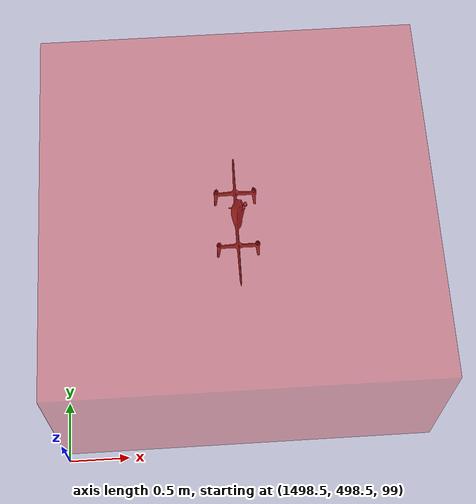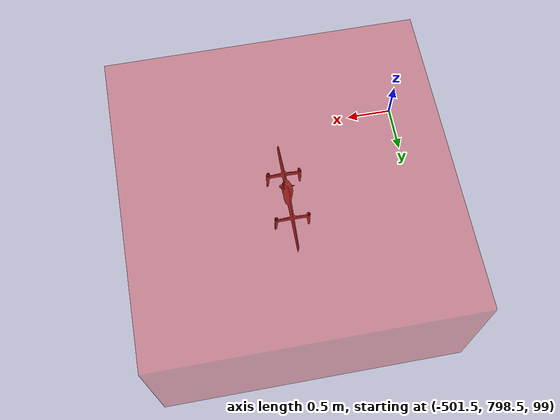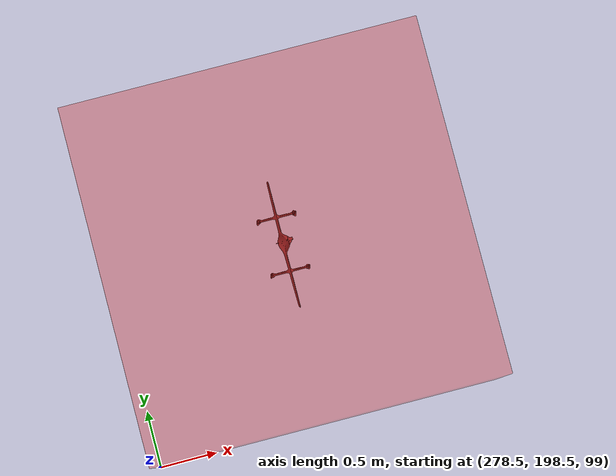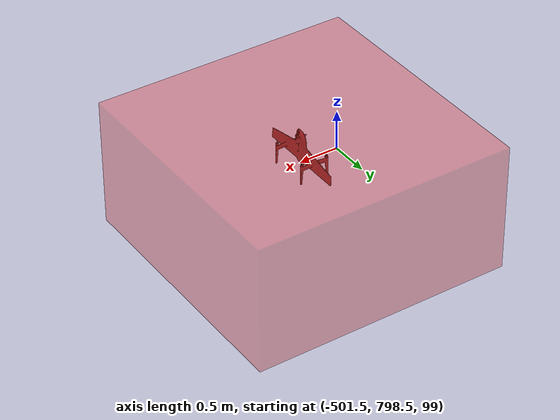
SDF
<sdf version="1.9">
 <world name="baylands">
  <physics type="ode">
   <max_step_size>0.004</max_step_size>
   <real_time_factor>1.0</real_time_factor>
   <real_time_update_rate>250</real_time_update_rate>
  </physics>
  <gravity>0 0 -9.8</gravity>
  <magnetic_field>6e-06 2.3e-05 -4.2e-05</magnetic_field>
  <atmosphere type="adiabatic"/>
  <scene>
   <ambient>0.8 0.5 1</ambient>
   <grid>false</grid>
   <sky><clouds>true</clouds></sky>
   <shadows>1</shadows>
  </scene>
  <light name="sunUTC" type="directional">
   <pose>0 0 500 0 -0 0</pose>
   <cast_shadows>false</cast_shadows>
   <intensity>1</intensity>
   <direction>0.001 0.625 -0.78</direction>
   <diffuse>0.904 0.904 0.904 1</diffuse>
   <specular>0.271 0.271 0.271 1</specular>
   <attenuation><range>2000</range><linear>0</linear><constant>1</constant><quadratic>0</quadratic></attenuation>
  </light>
  <include>
   <uri>model://intruder_quadtailsitter</uri>
   <name>intruder_0</name>
   <pose>280 200 100 0 0 0</pose>
  </include>
  <include>
   <uri>model://intruder_quadtailsitter_circle</uri>
   <name>intruder_1</name>
   <pose>1500 500 100 0 0 0</pose>
  </include>
  <include>
   <uri>model://intruder_quadtailsitter_figure8</uri>
   <name>intruder_2</name>
   <pose>-500 800 100 0 0 0</pose>
  </include>
  <spherical_coordinates>
   <surface_model>EARTH_WGS84</surface_model>
   <world_frame_orientation>ENU</world_frame_orientation>
   <latitude_deg>37.412173071650805</latitude_deg>
   <longitude_deg>-121.998878727967</longitude_deg>
   <elevation>38</elevation>
  </spherical_coordinates>
 </world>
</sdf>

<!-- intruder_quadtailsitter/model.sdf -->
<sdf version='1.9'>
  <model name='intruder_quadtailsitter'>
    <static>false</static>
    <pose>0 0 0 0 0 0</pose>

    <link name='base_link'>
      <inertial>
        <mass>2.0</mass>
        <inertia>
          <ixx>0.02</ixx>
          <iyy>0.02</iyy>
          <izz>0.04</izz>
        </inertia>
      </inertial>

      <visual name='body_visual'>
        <pose>-0.005 0 0.4 0 0 1.57</pose>
        <geometry>
          <mesh>
            <scale>0.001 0.001 0.001</scale>
            <uri>model://quadtailsitter/meshes/body.dae</uri>
          </mesh>
        </geometry>
        <material>
          <ambient>0.45 0.12 0.12 1.0</ambient>
          <diffuse>0.55 0.15 0.15 1.0</diffuse>
        </material>
      </visual>

      <collision name='body_collision'>
        <!-- FW: pitched 90 deg; long axis along nose (+Z body → horizontal flight). -->
        <pose>0 0 0 0 1.5707 0</pose>
        <geometry>
          <box>
            <size>0.55 0.35 0.25</size>
          </box>
        </geometry>
      </collision>

      <!-- Large visual + collision so gpu_lidar can see the intruder at range. -->
      <visual name='radar_reflector_visual'>
        <pose>0 0 0 0 0 0</pose>
        <geometry>
          <box>
            <size>3.0 3.0 1.5</size>
          </box>
        </geometry>
        <material>
          <ambient>0.8 0.1 0.1 0.35</ambient>
          <diffuse>0.9 0.15 0.15 0.35</diffuse>
        </material>
        <transparency>0.65</transparency>
      </visual>
      <collision name='radar_reflector'>
        <pose>0 0 0 0 0 0</pose>
        <geometry>
          <box>
            <size>3.0 3.0 1.5</size>
          </box>
        </geometry>
      </collision>
    </link>

    <plugin filename="libTrajectoryFollowerController.so"
            name="custom::TrajectoryFollowerController">
      <link_name>base_link</link_name>
      <loop>true</loop>
      <!-- Kinematic: SetWorldPoseCmd each step (no ODE wrench). Pose pub throttled for radar. -->
      <kinematic>true</kinematic>
      <publish_pose>true</publish_pose>
      <pose_publish_rate_hz>25</pose_publish_rate_hz>
      <!-- Tailsitter FW cruise: nose (+Z body) horizontal; applied after waypoint yaw. -->
      <pitch_offset>1.5707</pitch_offset>
      <!-- Racetrack: 14 km straight, 180 deg turn (R=500 m), reverse 14 km, turn; loop forever @ ~100 km/h. Relative to spawn. -->
      <waypoint><time>0.000</time><pose>0.00 0.00 0.00 0.000 0.000 0.000</pose></waypoint>
      <waypoint><time>504.000</time><pose>14000.00 0.00 0.00 0.000 0.000 0.000</pose></waypoint>
      <waypoint><time>507.142</time><pose>14086.82 7.60 0.00 0.000 0.000 0.175</pose></waypoint>
      <waypoint><time>510.283</time><pose>14171.01 30.15 0.00 0.000 0.000 0.349</pose></waypoint>
      <waypoint><time>513.425</time><pose>14250.00 66.99 0.00 0.000 0.000 0.524</pose></waypoint>
      <waypoint><time>516.566</time><pose>14321.39 116.98 0.00 0.000 0.000 0.698</pose></waypoint>
      <waypoint><time>519.708</time><pose>14383.02 178.61 0.00 0.000 0.000 0.873</pose></waypoint>
      <waypoint><time>522.850</time><pose>14433.01 250.00 0.00 0.000 0.000 1.047</pose></waypoint>
      <waypoint><time>525.991</time><pose>14469.85 328.99 0.00 0.000 0.000 1.222</pose></waypoint>
      <waypoint><time>529.133</time><pose>14492.40 413.18 0.00 0.000 0.000 1.396</pose></waypoint>
      <waypoint><time>532.274</time><pose>14500.00 500.00 0.00 0.000 0.000 1.571</pose></waypoint>
      <waypoint><time>535.416</time><pose>14492.40 586.82 0.00 0.000 0.000 1.745</pose></waypoint>
      <waypoint><time>538.558</time><pose>14469.85 671.01 0.00 0.000 0.000 1.920</pose></waypoint>
      <waypoint><time>541.699</time><pose>14433.01 750.00 0.00 0.000 0.000 2.094</pose></waypoint>
      <waypoint><time>544.841</time><pose>14383.02 821.39 0.00 0.000 0.000 2.269</pose></waypoint>
      <waypoint><time>547.982</time><pose>14321.39 883.02 0.00 0.000 0.000 2.443</pose></waypoint>
      <waypoint><time>551.124</time><pose>14250.00 933.01 0.00 0.000 0.000 2.618</pose></waypoint>
      <waypoint><time>554.265</time><pose>14171.01 969.85 0.00 0.000 0.000 2.793</pose></waypoint>
      <waypoint><time>557.407</time><pose>14086.82 992.40 0.00 0.000 0.000 2.967</pose></waypoint>
      <waypoint><time>560.549</time><pose>14000.00 1000.00 0.00 0.000 0.000 3.142</pose></waypoint>
      <waypoint><time>1064.549</time><pose>0.00 1000.00 0.00 0.000 0.000 3.142</pose></waypoint>
      <waypoint><time>1067.690</time><pose>-86.82 992.40 0.00 0.000 0.000 -2.967</pose></waypoint>
      <waypoint><time>1070.832</time><pose>-171.01 969.85 0.00 0.000 0.000 -2.793</pose></waypoint>
      <waypoint><time>1073.973</time><pose>-250.00 933.01 0.00 0.000 0.000 -2.618</pose></waypoint>
      <waypoint><time>1077.115</time><pose>-321.39 883.02 0.00 0.000 0.000 -2.443</pose></waypoint>
      <waypoint><time>1080.257</time><pose>-383.02 821.39 0.00 0.000 0.000 -2.269</pose></waypoint>
      <waypoint><time>1083.398</time><pose>-433.01 750.00 0.00 0.000 0.000 -2.094</pose></waypoint>
      <waypoint><time>1086.540</time><pose>-469.85 671.01 0.00 0.000 0.000 -1.920</pose></waypoint>
      <waypoint><time>1089.681</time><pose>-492.40 586.82 0.00 0.000 0.000 -1.745</pose></waypoint>
      <waypoint><time>1092.823</time><pose>-500.00 500.00 0.00 0.000 0.000 -1.571</pose></waypoint>
      <waypoint><time>1095.965</time><pose>-492.40 413.18 0.00 0.000 0.000 -1.396</pose></waypoint>
      <waypoint><time>1099.106</time><pose>-469.85 328.99 0.00 0.000 0.000 -1.222</pose></waypoint>
      <waypoint><time>1102.248</time><pose>-433.01 250.00 0.00 0.000 0.000 -1.047</pose></waypoint>
      <waypoint><time>1105.389</time><pose>-383.02 178.61 0.00 0.000 0.000 -0.873</pose></waypoint>
      <waypoint><time>1108.531</time><pose>-321.39 116.98 0.00 0.000 0.000 -0.698</pose></waypoint>
      <waypoint><time>1111.673</time><pose>-250.00 66.99 0.00 0.000 0.000 -0.524</pose></waypoint>
      <waypoint><time>1114.814</time><pose>-171.01 30.15 0.00 0.000 0.000 -0.349</pose></waypoint>
      <waypoint><time>1117.956</time><pose>-86.82 7.60 0.00 0.000 0.000 -0.175</pose></waypoint>
      <waypoint><time>1121.097</time><pose>-0.00 0.00 0.00 0.000 0.000 0.000</pose></waypoint>
    </plugin>
  </model>
</sdf>

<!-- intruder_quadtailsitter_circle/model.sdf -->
<sdf version='1.9'>
  <model name='intruder_quadtailsitter_circle'>
    <static>false</static>
    <pose>0 0 0 0 0 0</pose>

    <link name='base_link'>
      <inertial>
        <mass>2.0</mass>
        <inertia>
          <ixx>0.02</ixx>
          <iyy>0.02</iyy>
          <izz>0.04</izz>
        </inertia>
      </inertial>

      <visual name='body_visual'>
        <pose>-0.005 0 0.4 0 0 1.57</pose>
        <geometry>
          <mesh>
            <scale>0.001 0.001 0.001</scale>
            <uri>model://quadtailsitter/meshes/body.dae</uri>
          </mesh>
        </geometry>
        <material>
          <ambient>0.45 0.12 0.12 1.0</ambient>
          <diffuse>0.55 0.15 0.15 1.0</diffuse>
        </material>
      </visual>

      <collision name='body_collision'>
        <!-- FW: pitched 90 deg; long axis along nose (+Z body → horizontal flight). -->
        <pose>0 0 0 0 1.5707 0</pose>
        <geometry>
          <box>
            <size>0.55 0.35 0.25</size>
          </box>
        </geometry>
      </collision>

      <!-- Large visual + collision so gpu_lidar can see the intruder at range. -->
      <visual name='radar_reflector_visual'>
        <pose>0 0 0 0 0 0</pose>
        <geometry>
          <box>
            <size>3.0 3.0 1.5</size>
          </box>
        </geometry>
        <material>
          <ambient>0.8 0.1 0.1 0.35</ambient>
          <diffuse>0.9 0.15 0.15 0.35</diffuse>
        </material>
        <transparency>0.65</transparency>
      </visual>
      <collision name='radar_reflector'>
        <pose>0 0 0 0 0 0</pose>
        <geometry>
          <box>
            <size>3.0 3.0 1.5</size>
          </box>
        </geometry>
      </collision>
    </link>

    <plugin filename="libTrajectoryFollowerController.so"
            name="custom::TrajectoryFollowerController">
      <link_name>base_link</link_name>
      <loop>true</loop>
      <kinematic>true</kinematic>
      <publish_pose>true</publish_pose>
      <pose_publish_rate_hz>25</pose_publish_rate_hz>
      <!-- pose_topic omitted: defaults to /{model_name}/pose -->
      <pitch_offset>1.5707</pitch_offset>
      <!-- Circle: R=800 m, start at spawn, center +(0,R), ~100 km/h. -->
      <waypoint><time>0.000</time><pose>0.00 0.00 0.00 0.000 0.000 0.000</pose></waypoint>
      <waypoint><time>2.513</time><pose>69.72 3.04 0.00 0.000 0.000 0.087</pose></waypoint>
      <waypoint><time>5.027</time><pose>138.92 12.15 0.00 0.000 0.000 0.175</pose></waypoint>
      <waypoint><time>7.540</time><pose>207.06 27.26 0.00 0.000 0.000 0.262</pose></waypoint>
      <waypoint><time>10.053</time><pose>273.62 48.25 0.00 0.000 0.000 0.349</pose></waypoint>
      <waypoint><time>12.566</time><pose>338.09 74.95 0.00 0.000 0.000 0.436</pose></waypoint>
      <waypoint><time>15.080</time><pose>400.00 107.18 0.00 0.000 0.000 0.524</pose></waypoint>
      <waypoint><time>17.593</time><pose>458.86 144.68 0.00 0.000 0.000 0.611</pose></waypoint>
      <waypoint><time>20.106</time><pose>514.23 187.16 0.00 0.000 0.000 0.698</pose></waypoint>
      <waypoint><time>22.619</time><pose>565.69 234.31 0.00 0.000 0.000 0.785</pose></waypoint>
      <waypoint><time>25.133</time><pose>612.84 285.77 0.00 0.000 0.000 0.873</pose></waypoint>
      <waypoint><time>27.646</time><pose>655.32 341.14 0.00 0.000 0.000 0.960</pose></waypoint>
      <waypoint><time>30.159</time><pose>692.82 400.00 0.00 0.000 0.000 1.047</pose></waypoint>
      <waypoint><time>32.673</time><pose>725.05 461.91 0.00 0.000 0.000 1.134</pose></waypoint>
      <waypoint><time>35.186</time><pose>751.75 526.38 0.00 0.000 0.000 1.222</pose></waypoint>
      <waypoint><time>37.699</time><pose>772.74 592.94 0.00 0.000 0.000 1.309</pose></waypoint>
      <waypoint><time>40.212</time><pose>787.85 661.08 0.00 0.000 0.000 1.396</pose></waypoint>
      <waypoint><time>42.726</time><pose>796.96 730.28 0.00 0.000 0.000 1.484</pose></waypoint>
      <waypoint><time>45.239</time><pose>800.00 800.00 0.00 0.000 0.000 1.571</pose></waypoint>
      <waypoint><time>47.752</time><pose>796.96 869.72 0.00 0.000 0.000 1.658</pose></waypoint>
      <waypoint><time>50.265</time><pose>787.85 938.92 0.00 0.000 0.000 1.745</pose></waypoint>
      <waypoint><time>52.779</time><pose>772.74 1007.06 0.00 0.000 0.000 1.833</pose></waypoint>
      <waypoint><time>55.292</time><pose>751.75 1073.62 0.00 0.000 0.000 1.920</pose></waypoint>
      <waypoint><time>57.805</time><pose>725.05 1138.09 0.00 0.000 0.000 2.007</pose></waypoint>
      <waypoint><time>60.319</time><pose>692.82 1200.00 0.00 0.000 0.000 2.094</pose></waypoint>
      <waypoint><time>62.832</time><pose>655.32 1258.86 0.00 0.000 0.000 2.182</pose></waypoint>
      <waypoint><time>65.345</time><pose>612.84 1314.23 0.00 0.000 0.000 2.269</pose></waypoint>
      <waypoint><time>67.858</time><pose>565.69 1365.69 0.00 0.000 0.000 2.356</pose></waypoint>
      <waypoint><time>70.372</time><pose>514.23 1412.84 0.00 0.000 0.000 2.443</pose></waypoint>
      <waypoint><time>72.885</time><pose>458.86 1455.32 0.00 0.000 0.000 2.531</pose></waypoint>
      <waypoint><time>75.398</time><pose>400.00 1492.82 0.00 0.000 0.000 2.618</pose></waypoint>
      <waypoint><time>77.911</time><pose>338.09 1525.05 0.00 0.000 0.000 2.705</pose></waypoint>
      <waypoint><time>80.425</time><pose>273.62 1551.75 0.00 0.000 0.000 2.793</pose></waypoint>
      <waypoint><time>82.938</time><pose>207.06 1572.74 0.00 0.000 0.000 2.880</pose></waypoint>
      <waypoint><time>85.451</time><pose>138.92 1587.85 0.00 0.000 0.000 2.967</pose></waypoint>
      <waypoint><time>87.965</time><pose>69.72 1596.96 0.00 0.000 0.000 3.054</pose></waypoint>
      <waypoint><time>90.478</time><pose>0.00 1600.00 0.00 0.000 0.000 3.142</pose></waypoint>
      <waypoint><time>92.991</time><pose>-69.72 1596.96 0.00 0.000 0.000 -3.054</pose></waypoint>
      <waypoint><time>95.504</time><pose>-138.92 1587.85 0.00 0.000 0.000 -2.967</pose></waypoint>
      <waypoint><time>98.018</time><pose>-207.06 1572.74 0.00 0.000 0.000 -2.880</pose></waypoint>
      <waypoint><time>100.531</time><pose>-273.62 1551.75 0.00 0.000 0.000 -2.793</pose></waypoint>
      <waypoint><time>103.044</time><pose>-338.09 1525.05 0.00 0.000 0.000 -2.705</pose></waypoint>
      <waypoint><time>105.558</time><pose>-400.00 1492.82 0.00 0.000 0.000 -2.618</pose></waypoint>
      <waypoint><time>108.071</time><pose>-458.86 1455.32 0.00 0.000 0.000 -2.531</pose></waypoint>
      <waypoint><time>110.584</time><pose>-514.23 1412.84 0.00 0.000 0.000 -2.443</pose></waypoint>
      <waypoint><time>113.097</time><pose>-565.69 1365.69 0.00 0.000 0.000 -2.356</pose></waypoint>
      <waypoint><time>115.611</time><pose>-612.84 1314.23 0.00 0.000 0.000 -2.269</pose></waypoint>
      <waypoint><time>118.124</time><pose>-655.32 1258.86 0.00 0.000 0.000 -2.182</pose></waypoint>
      <waypoint><time>120.637</time><pose>-692.82 1200.00 0.00 0.000 0.000 -2.094</pose></waypoint>
      <waypoint><time>123.150</time><pose>-725.05 1138.09 0.00 0.000 0.000 -2.007</pose></waypoint>
      <waypoint><time>125.664</time><pose>-751.75 1073.62 0.00 0.000 0.000 -1.920</pose></waypoint>
      <waypoint><time>128.177</time><pose>-772.74 1007.06 0.00 0.000 0.000 -1.833</pose></waypoint>
      <waypoint><time>130.690</time><pose>-787.85 938.92 0.00 0.000 0.000 -1.745</pose></waypoint>
      <waypoint><time>133.204</time><pose>-796.96 869.72 0.00 0.000 0.000 -1.658</pose></waypoint>
      <waypoint><time>135.717</time><pose>-800.00 800.00 0.00 0.000 0.000 -1.571</pose></waypoint>
      <waypoint><time>138.230</time><pose>-796.96 730.28 0.00 0.000 0.000 -1.484</pose></waypoint>
      <waypoint><time>140.743</time><pose>-787.85 661.08 0.00 0.000 0.000 -1.396</pose></waypoint>
      <waypoint><time>143.257</time><pose>-772.74 592.94 0.00 0.000 0.000 -1.309</pose></waypoint>
      <waypoint><time>145.770</time><pose>-751.75 526.38 0.00 0.000 0.000 -1.222</pose></waypoint>
      <waypoint><time>148.283</time><pose>-725.05 461.91 0.00 0.000 0.000 -1.134</pose></waypoint>
      <waypoint><time>150.796</time><pose>-692.82 400.00 0.00 0.000 0.000 -1.047</pose></waypoint>
      <waypoint><time>153.310</time><pose>-655.32 341.14 0.00 0.000 0.000 -0.960</pose></waypoint>
      <waypoint><time>155.823</time><pose>-612.84 285.77 0.00 0.000 0.000 -0.873</pose></waypoint>
      <waypoint><time>158.336</time><pose>-565.69 234.31 0.00 0.000 0.000 -0.785</pose></waypoint>
      <waypoint><time>160.850</time><pose>-514.23 187.16 0.00 0.000 0.000 -0.698</pose></waypoint>
      <waypoint><time>163.363</time><pose>-458.86 144.68 0.00 0.000 0.000 -0.611</pose></waypoint>
      <waypoint><time>165.876</time><pose>-400.00 107.18 0.00 0.000 0.000 -0.524</pose></waypoint>
      <waypoint><time>168.389</time><pose>-338.09 74.95 0.00 0.000 0.000 -0.436</pose></waypoint>
      <waypoint><time>170.903</time><pose>-273.62 48.25 0.00 0.000 0.000 -0.349</pose></waypoint>
      <waypoint><time>173.416</time><pose>-207.06 27.26 0.00 0.000 0.000 -0.262</pose></waypoint>
      <waypoint><time>175.929</time><pose>-138.92 12.15 0.00 0.000 0.000 -0.175</pose></waypoint>
      <waypoint><time>178.442</time><pose>-69.72 3.04 0.00 0.000 0.000 -0.087</pose></waypoint>
      <waypoint><time>180.956</time><pose>-0.00 0.00 0.00 0.000 0.000 0.000</pose></waypoint>
    </plugin>
  </model>
</sdf>

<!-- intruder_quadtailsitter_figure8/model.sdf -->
<sdf version='1.9'>
  <model name='intruder_quadtailsitter_figure8'>
    <static>false</static>
    <pose>0 0 0 0 0 0</pose>

    <link name='base_link'>
      <inertial>
        <mass>2.0</mass>
        <inertia>
          <ixx>0.02</ixx>
          <iyy>0.02</iyy>
          <izz>0.04</izz>
        </inertia>
      </inertial>

      <visual name='body_visual'>
        <pose>-0.005 0 0.4 0 0 1.57</pose>
        <geometry>
          <mesh>
            <scale>0.001 0.001 0.001</scale>
            <uri>model://quadtailsitter/meshes/body.dae</uri>
          </mesh>
        </geometry>
        <material>
          <ambient>0.45 0.12 0.12 1.0</ambient>
          <diffuse>0.55 0.15 0.15 1.0</diffuse>
        </material>
      </visual>

      <collision name='body_collision'>
        <!-- FW: pitched 90 deg; long axis along nose (+Z body → horizontal flight). -->
        <pose>0 0 0 0 1.5707 0</pose>
        <geometry>
          <box>
            <size>0.55 0.35 0.25</size>
          </box>
        </geometry>
      </collision>

      <!-- Large visual + collision so gpu_lidar can see the intruder at range. -->
      <visual name='radar_reflector_visual'>
        <pose>0 0 0 0 0 0</pose>
        <geometry>
          <box>
            <size>3.0 3.0 1.5</size>
          </box>
        </geometry>
        <material>
          <ambient>0.8 0.1 0.1 0.35</ambient>
          <diffuse>0.9 0.15 0.15 0.35</diffuse>
        </material>
        <transparency>0.65</transparency>
      </visual>
      <collision name='radar_reflector'>
        <pose>0 0 0 0 0 0</pose>
        <geometry>
          <box>
            <size>3.0 3.0 1.5</size>
          </box>
        </geometry>
      </collision>
    </link>

    <plugin filename="libTrajectoryFollowerController.so"
            name="custom::TrajectoryFollowerController">
      <link_name>base_link</link_name>
      <loop>true</loop>
      <kinematic>true</kinematic>
      <publish_pose>true</publish_pose>
      <pose_publish_rate_hz>25</pose_publish_rate_hz>
      <!-- pose_topic omitted: defaults to /{model_name}/pose -->
      <pitch_offset>1.5707</pitch_offset>
      <!-- Figure-8 (Gerono): a=1000 m, start at spawn crossing, ~100 km/h. -->
      <waypoint><time>0.000</time><pose>0.00 0.00 0.00 0.000 0.000 0.785</pose></waypoint>
      <waypoint><time>1.776</time><pose>34.90 34.88 0.00 0.000 0.000 0.784</pose></waypoint>
      <waypoint><time>3.546</time><pose>69.76 69.59 0.00 0.000 0.000 0.782</pose></waypoint>
      <waypoint><time>5.306</time><pose>104.53 103.96 0.00 0.000 0.000 0.777</pose></waypoint>
      <waypoint><time>7.049</time><pose>139.17 137.82 0.00 0.000 0.000 0.771</pose></waypoint>
      <waypoint><time>8.772</time><pose>173.65 171.01 0.00 0.000 0.000 0.762</pose></waypoint>
      <waypoint><time>10.468</time><pose>207.91 203.37 0.00 0.000 0.000 0.751</pose></waypoint>
      <waypoint><time>12.133</time><pose>241.92 234.74 0.00 0.000 0.000 0.738</pose></waypoint>
      <waypoint><time>13.763</time><pose>275.64 264.96 0.00 0.000 0.000 0.723</pose></waypoint>
      <waypoint><time>15.353</time><pose>309.02 293.89 0.00 0.000 0.000 0.705</pose></waypoint>
      <waypoint><time>16.899</time><pose>342.02 321.39 0.00 0.000 0.000 0.684</pose></waypoint>
      <waypoint><time>18.398</time><pose>374.61 347.33 0.00 0.000 0.000 0.660</pose></waypoint>
      <waypoint><time>19.847</time><pose>406.74 371.57 0.00 0.000 0.000 0.632</pose></waypoint>
      <waypoint><time>21.243</time><pose>438.37 394.01 0.00 0.000 0.000 0.601</pose></waypoint>
      <waypoint><time>22.584</time><pose>469.47 414.52 0.00 0.000 0.000 0.565</pose></waypoint>
      <waypoint><time>23.869</time><pose>500.00 433.01 0.00 0.000 0.000 0.524</pose></waypoint>
      <waypoint><time>25.098</time><pose>529.92 449.40 0.00 0.000 0.000 0.477</pose></waypoint>
      <waypoint><time>26.269</time><pose>559.19 463.59 0.00 0.000 0.000 0.424</pose></waypoint>
      <waypoint><time>27.385</time><pose>587.79 475.53 0.00 0.000 0.000 0.365</pose></waypoint>
      <waypoint><time>28.447</time><pose>615.66 485.15 0.00 0.000 0.000 0.298</pose></waypoint>
      <waypoint><time>29.458</time><pose>642.79 492.40 0.00 0.000 0.000 0.223</pose></waypoint>
      <waypoint><time>30.423</time><pose>669.13 497.26 0.00 0.000 0.000 0.140</pose></waypoint>
      <waypoint><time>31.347</time><pose>694.66 499.70 0.00 0.000 0.000 0.048</pose></waypoint>
      <waypoint><time>32.237</time><pose>719.34 499.70 0.00 0.000 0.000 -0.050</pose></waypoint>
      <waypoint><time>33.099</time><pose>743.14 497.26 0.00 0.000 0.000 -0.155</pose></waypoint>
      <waypoint><time>33.943</time><pose>766.04 492.40 0.00 0.000 0.000 -0.264</pose></waypoint>
      <waypoint><time>34.777</time><pose>788.01 485.15 0.00 0.000 0.000 -0.374</pose></waypoint>
      <waypoint><time>35.610</time><pose>809.02 475.53 0.00 0.000 0.000 -0.484</pose></waypoint>
      <waypoint><time>36.450</time><pose>829.04 463.59 0.00 0.000 0.000 -0.590</pose></waypoint>
      <waypoint><time>37.305</time><pose>848.05 449.40 0.00 0.000 0.000 -0.691</pose></waypoint>
      <waypoint><time>38.182</time><pose>866.03 433.01 0.00 0.000 0.000 -0.785</pose></waypoint>
      <waypoint><time>39.085</time><pose>882.95 414.52 0.00 0.000 0.000 -0.872</pose></waypoint>
      <waypoint><time>40.018</time><pose>898.79 394.01 0.00 0.000 0.000 -0.952</pose></waypoint>
      <waypoint><time>40.985</time><pose>913.55 371.57 0.00 0.000 0.000 -1.025</pose></waypoint>
      <waypoint><time>41.987</time><pose>927.18 347.33 0.00 0.000 0.000 -1.091</pose></waypoint>
      <waypoint><time>43.024</time><pose>939.69 321.39 0.00 0.000 0.000 -1.151</pose></waypoint>
      <waypoint><time>44.095</time><pose>951.06 293.89 0.00 0.000 0.000 -1.206</pose></waypoint>
      <waypoint><time>45.199</time><pose>961.26 264.96 0.00 0.000 0.000 -1.257</pose></waypoint>
      <waypoint><time>46.335</time><pose>970.30 234.74 0.00 0.000 0.000 -1.303</pose></waypoint>
      <waypoint><time>47.499</time><pose>978.15 203.37 0.00 0.000 0.000 -1.347</pose></waypoint>
      <waypoint><time>48.688</time><pose>984.81 171.01 0.00 0.000 0.000 -1.388</pose></waypoint>
      <waypoint><time>49.898</time><pose>990.27 137.82 0.00 0.000 0.000 -1.427</pose></waypoint>
      <waypoint><time>51.127</time><pose>994.52 103.96 0.00 0.000 0.000 -1.464</pose></waypoint>
      <waypoint><time>52.369</time><pose>997.56 69.59 0.00 0.000 0.000 -1.500</pose></waypoint>
      <waypoint><time>53.620</time><pose>999.39 34.88 0.00 0.000 0.000 -1.536</pose></waypoint>
      <waypoint><time>54.875</time><pose>1000.00 0.00 0.00 0.000 0.000 -1.571</pose></waypoint>
      <waypoint><time>56.131</time><pose>999.39 -34.88 0.00 0.000 0.000 -1.606</pose></waypoint>
      <waypoint><time>57.381</time><pose>997.56 -69.59 0.00 0.000 0.000 -1.641</pose></waypoint>
      <waypoint><time>58.623</time><pose>994.52 -103.96 0.00 0.000 0.000 -1.677</pose></waypoint>
      <waypoint><time>59.852</time><pose>990.27 -137.82 0.00 0.000 0.000 -1.715</pose></waypoint>
      <waypoint><time>61.062</time><pose>984.81 -171.01 0.00 0.000 0.000 -1.754</pose></waypoint>
      <waypoint><time>62.251</time><pose>978.15 -203.37 0.00 0.000 0.000 -1.795</pose></waypoint>
      <waypoint><time>63.415</time><pose>970.30 -234.74 0.00 0.000 0.000 -1.838</pose></waypoint>
      <waypoint><time>64.551</time><pose>961.26 -264.96 0.00 0.000 0.000 -1.885</pose></waypoint>
      <waypoint><time>65.655</time><pose>951.06 -293.89 0.00 0.000 0.000 -1.936</pose></waypoint>
      <waypoint><time>66.726</time><pose>939.69 -321.39 0.00 0.000 0.000 -1.991</pose></waypoint>
      <waypoint><time>67.763</time><pose>927.18 -347.33 0.00 0.000 0.000 -2.051</pose></waypoint>
      <waypoint><time>68.765</time><pose>913.55 -371.57 0.00 0.000 0.000 -2.117</pose></waypoint>
      <waypoint><time>69.732</time><pose>898.79 -394.01 0.00 0.000 0.000 -2.190</pose></waypoint>
      <waypoint><time>70.665</time><pose>882.95 -414.52 0.00 0.000 0.000 -2.269</pose></waypoint>
      <waypoint><time>71.568</time><pose>866.03 -433.01 0.00 0.000 0.000 -2.356</pose></waypoint>
      <waypoint><time>72.445</time><pose>848.05 -449.40 0.00 0.000 0.000 -2.450</pose></waypoint>
      <waypoint><time>73.300</time><pose>829.04 -463.59 0.00 0.000 0.000 -2.551</pose></waypoint>
      <waypoint><time>74.140</time><pose>809.02 -475.53 0.00 0.000 0.000 -2.658</pose></waypoint>
      <waypoint><time>74.973</time><pose>788.01 -485.15 0.00 0.000 0.000 -2.767</pose></waypoint>
      <waypoint><time>75.807</time><pose>766.04 -492.40 0.00 0.000 0.000 -2.878</pose></waypoint>
      <waypoint><time>76.651</time><pose>743.14 -497.26 0.00 0.000 0.000 -2.987</pose></waypoint>
      <waypoint><time>77.513</time><pose>719.34 -499.70 0.00 0.000 0.000 -3.091</pose></waypoint>
      <waypoint><time>78.403</time><pose>694.66 -499.70 0.00 0.000 0.000 3.093</pose></waypoint>
      <waypoint><time>79.327</time><pose>669.13 -497.26 0.00 0.000 0.000 3.002</pose></waypoint>
      <waypoint><time>80.292</time><pose>642.79 -492.40 0.00 0.000 0.000 2.919</pose></waypoint>
      <waypoint><time>81.303</time><pose>615.66 -485.15 0.00 0.000 0.000 2.844</pose></waypoint>
      <waypoint><time>82.365</time><pose>587.79 -475.53 0.00 0.000 0.000 2.777</pose></waypoint>
      <waypoint><time>83.481</time><pose>559.19 -463.59 0.00 0.000 0.000 2.717</pose></waypoint>
      <waypoint><time>84.653</time><pose>529.92 -449.40 0.00 0.000 0.000 2.665</pose></waypoint>
      <waypoint><time>85.881</time><pose>500.00 -433.01 0.00 0.000 0.000 2.618</pose></waypoint>
      <waypoint><time>87.166</time><pose>469.47 -414.52 0.00 0.000 0.000 2.577</pose></waypoint>
      <waypoint><time>88.507</time><pose>438.37 -394.01 0.00 0.000 0.000 2.541</pose></waypoint>
      <waypoint><time>89.903</time><pose>406.74 -371.57 0.00 0.000 0.000 2.509</pose></waypoint>
      <waypoint><time>91.352</time><pose>374.61 -347.33 0.00 0.000 0.000 2.482</pose></waypoint>
      <waypoint><time>92.851</time><pose>342.02 -321.39 0.00 0.000 0.000 2.458</pose></waypoint>
      <waypoint><time>94.397</time><pose>309.02 -293.89 0.00 0.000 0.000 2.437</pose></waypoint>
      <waypoint><time>95.987</time><pose>275.64 -264.96 0.00 0.000 0.000 2.419</pose></waypoint>
      <waypoint><time>97.617</time><pose>241.92 -234.74 0.00 0.000 0.000 2.403</pose></waypoint>
      <waypoint><time>99.282</time><pose>207.91 -203.37 0.00 0.000 0.000 2.390</pose></waypoint>
      <waypoint><time>100.978</time><pose>173.65 -171.01 0.00 0.000 0.000 2.380</pose></waypoint>
      <waypoint><time>102.701</time><pose>139.17 -137.82 0.00 0.000 0.000 2.371</pose></waypoint>
      <waypoint><time>104.444</time><pose>104.53 -103.96 0.00 0.000 0.000 2.364</pose></waypoint>
      <waypoint><time>106.204</time><pose>69.76 -69.59 0.00 0.000 0.000 2.360</pose></waypoint>
      <waypoint><time>107.974</time><pose>34.90 -34.88 0.00 0.000 0.000 2.357</pose></waypoint>
      <waypoint><time>109.750</time><pose>0.00 -0.00 0.00 0.000 0.000 2.356</pose></waypoint>
      <waypoint><time>111.526</time><pose>-34.90 34.88 0.00 0.000 0.000 2.357</pose></waypoint>
      <waypoint><time>113.296</time><pose>-69.76 69.59 0.00 0.000 0.000 2.360</pose></waypoint>
      <waypoint><time>115.056</time><pose>-104.53 103.96 0.00 0.000 0.000 2.364</pose></waypoint>
      <waypoint><time>116.799</time><pose>-139.17 137.82 0.00 0.000 0.000 2.371</pose></waypoint>
      <waypoint><time>118.522</time><pose>-173.65 171.01 0.00 0.000 0.000 2.380</pose></waypoint>
      <waypoint><time>120.218</time><pose>-207.91 203.37 0.00 0.000 0.000 2.390</pose></waypoint>
      <waypoint><time>121.883</time><pose>-241.92 234.74 0.00 0.000 0.000 2.403</pose></waypoint>
      <waypoint><time>123.513</time><pose>-275.64 264.96 0.00 0.000 0.000 2.419</pose></waypoint>
      <waypoint><time>125.103</time><pose>-309.02 293.89 0.00 0.000 0.000 2.437</pose></waypoint>
      <waypoint><time>126.649</time><pose>-342.02 321.39 0.00 0.000 0.000 2.458</pose></waypoint>
      <waypoint><time>128.148</time><pose>-374.61 347.33 0.00 0.000 0.000 2.482</pose></waypoint>
      <waypoint><time>129.597</time><pose>-406.74 371.57 0.00 0.000 0.000 2.509</pose></waypoint>
      <waypoint><time>130.993</time><pose>-438.37 394.01 0.00 0.000 0.000 2.541</pose></waypoint>
      <waypoint><time>132.334</time><pose>-469.47 414.52 0.00 0.000 0.000 2.577</pose></waypoint>
      <waypoint><time>133.619</time><pose>-500.00 433.01 0.00 0.000 0.000 2.618</pose></waypoint>
      <waypoint><time>134.848</time><pose>-529.92 449.40 0.00 0.000 0.000 2.665</pose></waypoint>
      <waypoint><time>136.019</time><pose>-559.19 463.59 0.00 0.000 0.000 2.717</pose></waypoint>
      <waypoint><time>137.135</time><pose>-587.79 475.53 0.00 0.000 0.000 2.777</pose></waypoint>
      <waypoint><time>138.197</time><pose>-615.66 485.15 0.00 0.000 0.000 2.844</pose></waypoint>
      <waypoint><time>139.208</time><pose>-642.79 492.40 0.00 0.000 0.000 2.919</pose></waypoint>
      <waypoint><time>140.173</time><pose>-669.13 497.26 0.00 0.000 0.000 3.002</pose></waypoint>
      <waypoint><time>141.097</time><pose>-694.66 499.70 0.00 0.000 0.000 3.093</pose></waypoint>
      <waypoint><time>141.987</time><pose>-719.34 499.70 0.00 0.000 0.000 -3.091</pose></waypoint>
      <waypoint><time>142.849</time><pose>-743.14 497.26 0.00 0.000 0.000 -2.987</pose></waypoint>
      <waypoint><time>143.693</time><pose>-766.04 492.40 0.00 0.000 0.000 -2.878</pose></waypoint>
      <waypoint><time>144.527</time><pose>-788.01 485.15 0.00 0.000 0.000 -2.767</pose></waypoint>
      <waypoint><time>145.360</time><pose>-809.02 475.53 0.00 0.000 0.000 -2.658</pose></waypoint>
      <waypoint><time>146.200</time><pose>-829.04 463.59 0.00 0.000 0.000 -2.551</pose></waypoint>
      <waypoint><time>147.055</time><pose>-848.05 449.40 0.00 0.000 0.000 -2.450</pose></waypoint>
      <waypoint><time>147.932</time><pose>-866.03 433.01 0.00 0.000 0.000 -2.356</pose></waypoint>
      <waypoint><time>148.835</time><pose>-882.95 414.52 0.00 0.000 0.000 -2.269</pose></waypoint>
      <waypoint><time>149.768</time><pose>-898.79 394.01 0.00 0.000 0.000 -2.190</pose></waypoint>
      <waypoint><time>150.735</time><pose>-913.55 371.57 0.00 0.000 0.000 -2.117</pose></waypoint>
      <waypoint><time>151.737</time><pose>-927.18 347.33 0.00 0.000 0.000 -2.051</pose></waypoint>
      <waypoint><time>152.774</time><pose>-939.69 321.39 0.00 0.000 0.000 -1.991</pose></waypoint>
      <waypoint><time>153.845</time><pose>-951.06 293.89 0.00 0.000 0.000 -1.936</pose></waypoint>
      <waypoint><time>154.949</time><pose>-961.26 264.96 0.00 0.000 0.000 -1.885</pose></waypoint>
      <waypoint><time>156.085</time><pose>-970.30 234.74 0.00 0.000 0.000 -1.838</pose></waypoint>
      <waypoint><time>157.249</time><pose>-978.15 203.37 0.00 0.000 0.000 -1.795</pose></waypoint>
      <waypoint><time>158.438</time><pose>-984.81 171.01 0.00 0.000 0.000 -1.754</pose></waypoint>
      <waypoint><time>159.648</time><pose>-990.27 137.82 0.00 0.000 0.000 -1.715</pose></waypoint>
      <waypoint><time>160.877</time><pose>-994.52 103.96 0.00 0.000 0.000 -1.677</pose></waypoint>
      <waypoint><time>162.119</time><pose>-997.56 69.59 0.00 0.000 0.000 -1.641</pose></waypoint>
      <waypoint><time>163.370</time><pose>-999.39 34.88 0.00 0.000 0.000 -1.606</pose></waypoint>
      <waypoint><time>164.625</time><pose>-1000.00 0.00 0.00 0.000 0.000 -1.571</pose></waypoint>
      <waypoint><time>165.881</time><pose>-999.39 -34.88 0.00 0.000 0.000 -1.536</pose></waypoint>
      <waypoint><time>167.131</time><pose>-997.56 -69.59 0.00 0.000 0.000 -1.500</pose></waypoint>
      <waypoint><time>168.373</time><pose>-994.52 -103.96 0.00 0.000 0.000 -1.464</pose></waypoint>
      <waypoint><time>169.602</time><pose>-990.27 -137.82 0.00 0.000 0.000 -1.427</pose></waypoint>
      <waypoint><time>170.812</time><pose>-984.81 -171.01 0.00 0.000 0.000 -1.388</pose></waypoint>
      <waypoint><time>172.001</time><pose>-978.15 -203.37 0.00 0.000 0.000 -1.347</pose></waypoint>
      <waypoint><time>173.165</time><pose>-970.30 -234.74 0.00 0.000 0.000 -1.303</pose></waypoint>
      <waypoint><time>174.301</time><pose>-961.26 -264.96 0.00 0.000 0.000 -1.257</pose></waypoint>
      <waypoint><time>175.405</time><pose>-951.06 -293.89 0.00 0.000 0.000 -1.206</pose></waypoint>
      <waypoint><time>176.477</time><pose>-939.69 -321.39 0.00 0.000 0.000 -1.151</pose></waypoint>
      <waypoint><time>177.513</time><pose>-927.18 -347.33 0.00 0.000 0.000 -1.091</pose></waypoint>
      <waypoint><time>178.515</time><pose>-913.55 -371.57 0.00 0.000 0.000 -1.025</pose></waypoint>
      <waypoint><time>179.482</time><pose>-898.79 -394.01 0.00 0.000 0.000 -0.952</pose></waypoint>
      <waypoint><time>180.415</time><pose>-882.95 -414.52 0.00 0.000 0.000 -0.872</pose></waypoint>
      <waypoint><time>181.318</time><pose>-866.03 -433.01 0.00 0.000 0.000 -0.785</pose></waypoint>
      <waypoint><time>182.195</time><pose>-848.05 -449.40 0.00 0.000 0.000 -0.691</pose></waypoint>
      <waypoint><time>183.050</time><pose>-829.04 -463.59 0.00 0.000 0.000 -0.590</pose></waypoint>
      <waypoint><time>183.890</time><pose>-809.02 -475.53 0.00 0.000 0.000 -0.484</pose></waypoint>
      <waypoint><time>184.723</time><pose>-788.01 -485.15 0.00 0.000 0.000 -0.374</pose></waypoint>
      <waypoint><time>185.557</time><pose>-766.04 -492.40 0.00 0.000 0.000 -0.264</pose></waypoint>
      <waypoint><time>186.401</time><pose>-743.14 -497.26 0.00 0.000 0.000 -0.155</pose></waypoint>
      <waypoint><time>187.263</time><pose>-719.34 -499.70 0.00 0.000 0.000 -0.050</pose></waypoint>
      <waypoint><time>188.153</time><pose>-694.66 -499.70 0.00 0.000 0.000 0.048</pose></waypoint>
      <waypoint><time>189.077</time><pose>-669.13 -497.26 0.00 0.000 0.000 0.140</pose></waypoint>
      <waypoint><time>190.042</time><pose>-642.79 -492.40 0.00 0.000 0.000 0.223</pose></waypoint>
      <waypoint><time>191.053</time><pose>-615.66 -485.15 0.00 0.000 0.000 0.298</pose></waypoint>
      <waypoint><time>192.115</time><pose>-587.79 -475.53 0.00 0.000 0.000 0.365</pose></waypoint>
      <waypoint><time>193.231</time><pose>-559.19 -463.59 0.00 0.000 0.000 0.424</pose></waypoint>
      <waypoint><time>194.403</time><pose>-529.92 -449.40 0.00 0.000 0.000 0.477</pose></waypoint>
      <waypoint><time>195.631</time><pose>-500.00 -433.01 0.00 0.000 0.000 0.524</pose></waypoint>
      <waypoint><time>196.916</time><pose>-469.47 -414.52 0.00 0.000 0.000 0.565</pose></waypoint>
      <waypoint><time>198.257</time><pose>-438.37 -394.01 0.00 0.000 0.000 0.601</pose></waypoint>
      <waypoint><time>199.653</time><pose>-406.74 -371.57 0.00 0.000 0.000 0.632</pose></waypoint>
      <waypoint><time>201.102</time><pose>-374.61 -347.33 0.00 0.000 0.000 0.660</pose></waypoint>
      <waypoint><time>202.601</time><pose>-342.02 -321.39 0.00 0.000 0.000 0.684</pose></waypoint>
      <waypoint><time>204.147</time><pose>-309.02 -293.89 0.00 0.000 0.000 0.705</pose></waypoint>
      <waypoint><time>205.737</time><pose>-275.64 -264.96 0.00 0.000 0.000 0.723</pose></waypoint>
      <waypoint><time>207.367</time><pose>-241.92 -234.74 0.00 0.000 0.000 0.738</pose></waypoint>
      <waypoint><time>209.032</time><pose>-207.91 -203.37 0.00 0.000 0.000 0.751</pose></waypoint>
      <waypoint><time>210.728</time><pose>-173.65 -171.01 0.00 0.000 0.000 0.762</pose></waypoint>
      <waypoint><time>212.451</time><pose>-139.17 -137.82 0.00 0.000 0.000 0.771</pose></waypoint>
      <waypoint><time>214.194</time><pose>-104.53 -103.96 0.00 0.000 0.000 0.777</pose></waypoint>
      <waypoint><time>215.954</time><pose>-69.76 -69.59 0.00 0.000 0.000 0.782</pose></waypoint>
      <waypoint><time>217.724</time><pose>-34.90 -34.88 0.00 0.000 0.000 0.784</pose></waypoint>
      <waypoint><time>219.500</time><pose>-0.00 -0.00 0.00 0.000 0.000 0.785</pose></waypoint>
    </plugin>
  </model>
</sdf>
